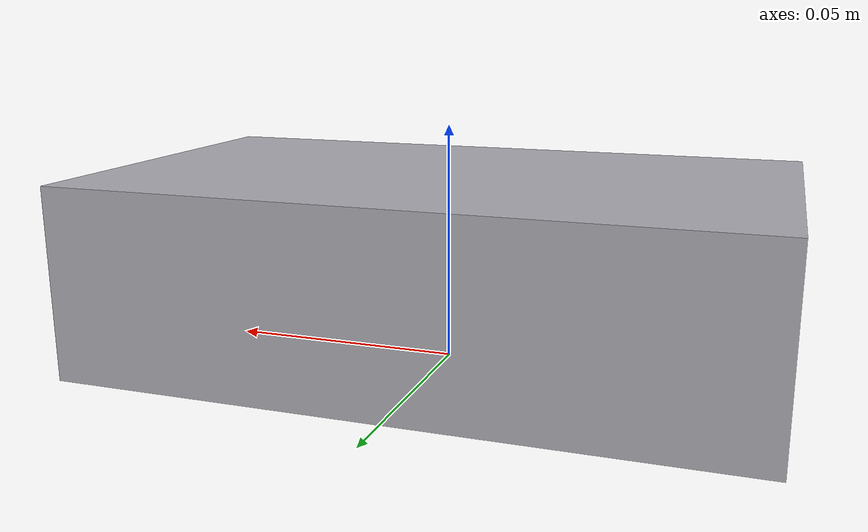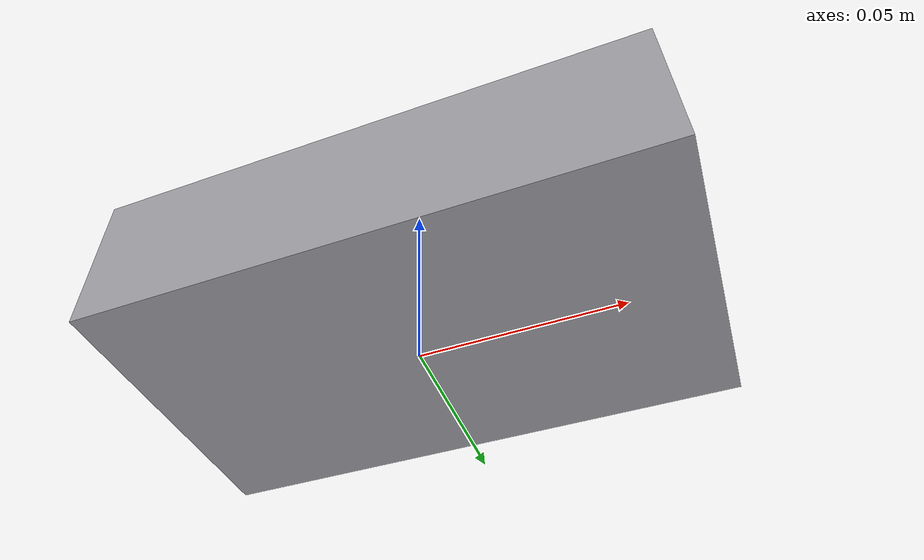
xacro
<?xml version="1.0" ?>
<robot name="box" xmlns:xacro="http://www.ros.org/wiki/xacro">

<xacro:include filename="$(find box_description)/urdf/materials.xacro" />
<xacro:include filename="$(find box_description)/urdf/box.trans" />
<xacro:include filename="$(find box_description)/urdf/box.gazebo" />
<link name="base_link">
  <inertial>
    <origin xyz="0.0 0.0 0.02" rpy="0 0 0"/>
    <mass value="3.5168"/>
    <inertia ixx="0.002345" iyy="0.006213" izz="0.00762" ixy="0.0" iyz="0.0" ixz="0.0"/>
  </inertial>
  <visual>
    <origin xyz="0 0 0" rpy="0 0 0"/>
    <geometry>
      <mesh filename="file://$(find box_description)/meshes/base_link.stl" scale="0.001 0.001 0.001"/>
    </geometry>
    <material name="silver"/>
  </visual>
  <collision>
    <origin xyz="0 0 0" rpy="0 0 0"/>
    <geometry>
      <mesh filename="file://$(find box_description)/meshes/base_link.stl" scale="0.001 0.001 0.001"/>
    </geometry>
  </collision>
</link>

</robot>

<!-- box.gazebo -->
<robot name="box" xmlns:xacro="http://www.ros.org/wiki/xacro" >

<xacro:property name="body_color" value="Gazebo/Silver" />

<gazebo>
  <plugin name="control" filename="libgazebo_ros_control.so"/>
</gazebo>
<gazebo reference="base_link">
  <material>${body_color}</material>
  <mu1>0.2</mu1>
  <mu2>0.2</mu2>
  <self_collide>true</self_collide>
  <gravity>true</gravity>
</gazebo>

</robot>
